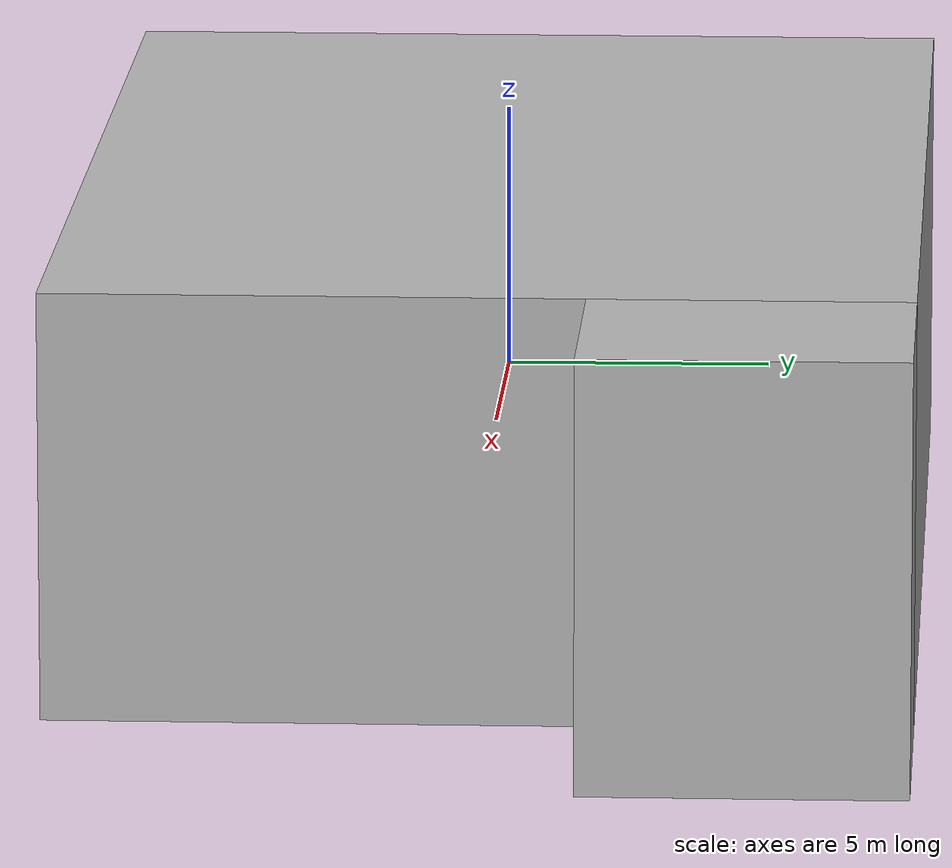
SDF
<?xml version='1.0'?>
<sdf version='1.6'>
  <model name='Hangar'>
    <link name='mainBuilding'>
      <self_collide>0</self_collide>
      <enable_wind>0</enable_wind>
      <kinematic>0</kinematic>
      <pose frame=''>0 0 0 0 -0 0</pose>
      <visual name='body_visual'>
        <geometry>
          <box>
            <size>25 16 8</size>
          </box>
        </geometry>
        <material>
          <script>
            <uri>model://Hangar/materials/scripts/</uri>
            <uri>model://Hangar/materials/textures/</uri>
            <name>Hangar/Image</name>
          </script>
        </material>
        <pose frame=''>0 0 0 0 -0 0</pose>
        <transparency>0</transparency>
        <cast_shadows>1</cast_shadows>
      </visual>
    </link>
    <link name='robot_link'>
      <self_collide>0</self_collide>
      <enable_wind>0</enable_wind>
      <kinematic>0</kinematic>
      <pose frame=''>15 5 0 0 -0 0</pose>
      <visual name='body_visual'>
        <geometry>
          <box>
            <size>5 6 8</size>
          </box>
        </geometry>
        <material>
          <script>
            <uri>model://Hangar/materials/scripts/</uri>
            <uri>model://Hangar/materials/textures/</uri>
            <name>Hangar/Image</name>
          </script>
        </material>
        <pose frame=''>0 0 0 0 -0 0</pose>
        <transparency>0</transparency>
        <cast_shadows>1</cast_shadows>
      </visual>
    </link>
    <static>1</static>
    <allow_auto_disable>1</allow_auto_disable>
  </model>
</sdf>
